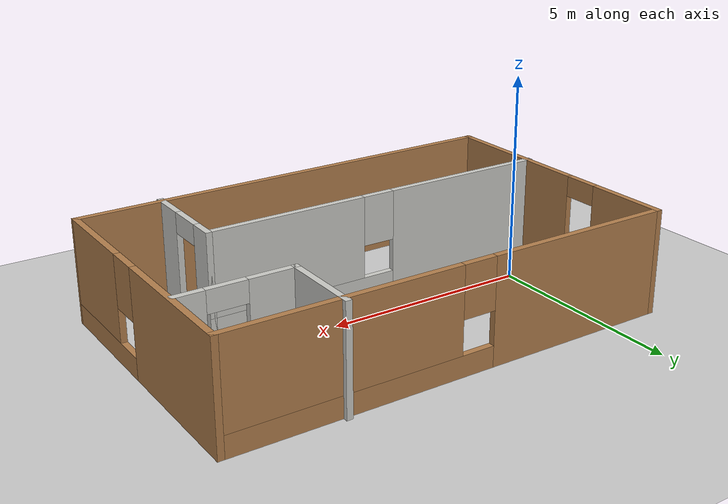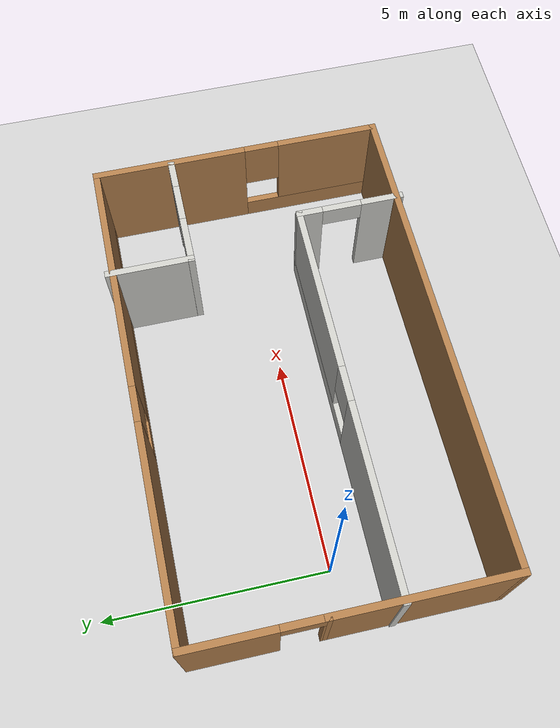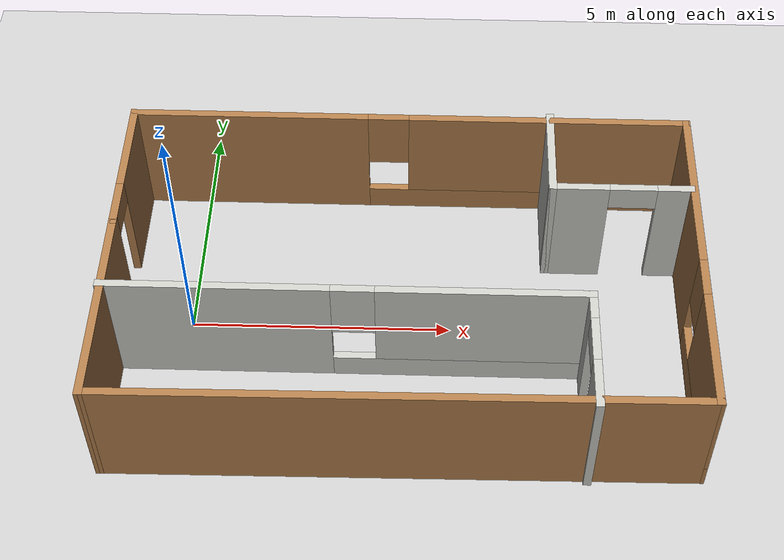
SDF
<sdf version="1.7">
 <world name="default">
  <light name="sun" type="directional">
   <pose>0 0 10 0 -0 0</pose>
   <diffuse>0.8 0.8 0.8 1</diffuse>
   <specular>0.2 0.2 0.2 1</specular>
   <attenuation>
    <range>1000</range>
    <constant>0.9</constant>
    <linear>0.01</linear>
    <quadratic>0.001</quadratic>
   </attenuation>
   <direction>-0.5 0.1 -0.9</direction>
   <spot><inner_angle>0</inner_angle><outer_angle>0</outer_angle><falloff>0</falloff></spot>
  </light>
  <model name="ground_plane">
   <static>1</static>
   <link name="link">
    <collision name="collision">
     <geometry><plane><normal>0 0 1</normal><size>100 100</size></plane></geometry>
     <surface><friction><ode><mu>100</mu><mu2>50</mu2></ode></friction></surface>
    </collision>
    <visual name="visual">
     <cast_shadows>0</cast_shadows>
     <geometry><plane><normal>0 0 1</normal><size>100 100</size></plane></geometry>
     <material>
      <script><uri>file://media/materials/scripts/gazebo.material</uri><name>Gazebo/Grey</name></script>
     </material>
    </visual>
   </link>
  </model>
  <gravity>0 0 -9.8</gravity>
  <magnetic_field>6e-06 2.3e-05 -4.2e-05</magnetic_field>
  <atmosphere type="adiabatic"/>
  <physics type="ode">
   <max_step_size>0.001</max_step_size>
   <real_time_factor>1</real_time_factor>
   <real_time_update_rate>1000</real_time_update_rate>
  </physics>
  <scene><ambient>0.4 0.4 0.4 1</ambient><background>0.7 0.7 0.7 1</background><shadows>1</shadows></scene>
  <audio><device>default</device></audio>
  <spherical_coordinates>
   <surface_model>EARTH_WGS84</surface_model>
   <latitude_deg>0</latitude_deg>
   <longitude_deg>0</longitude_deg>
   <elevation>0</elevation>
   <heading_deg>0</heading_deg>
  </spherical_coordinates>
  <model name="test2">
   <pose>4.1096 0.031605 0 0 -0 0</pose>
   <link name="Wall_0">
    <collision name="Wall_0_Collision">
     <geometry><box><size>4 0.15 2.5</size></box></geometry>
     <pose>0 0 1.25 0 -0 0</pose>
    </collision>
    <visual name="Wall_0_Visual">
     <pose>0 0 1.25 0 -0 0</pose>
     <geometry><box><size>4 0.15 2.5</size></box></geometry>
     <material>
      <script><uri>file://media/materials/scripts/gazebo.material</uri><name>Gazebo/Wood</name></script>
      <ambient>1 1 1 1</ambient>
     </material>
     <meta><layer>0</layer></meta>
    </visual>
    <pose>-5.40939 -1.47636 0 0 -0 -1.5708</pose>
   </link>
   <link name="Wall_10">
    <pose>-1.0163 -1.04578 0 0 -0 0</pose>
    <visual name="Wall_10_Visual_0">
     <pose>-2.38713 0 1.25 0 -0 0</pose>
     <geometry><box><size>4.22575 0.15 2.5</size></box></geometry>
     <material>
      <script><uri>file://media/materials/scripts/gazebo.material</uri><name>Gazebo/CeilingTiled</name></script>
      <ambient>1 1 1 1</ambient>
     </material>
     <meta><layer>0</layer></meta>
    </visual>
    <collision name="Wall_10_Collision_0">
     <geometry><box><size>4.22575 0.15 2.5</size></box></geometry>
     <pose>-2.38713 0 1.25 0 -0 0</pose>
    </collision>
    <visual name="Wall_10_Visual_1">
     <pose>2.11287 0 0.25 0 -0 0</pose>
     <geometry><box><size>4.77425 0.15 0.5</size></box></geometry>
     <material>
      <script><uri>file://media/materials/scripts/gazebo.material</uri><name>Gazebo/CeilingTiled</name></script>
      <ambient>1 1 1 1</ambient>
     </material>
     <meta><layer>0</layer></meta>
    </visual>
    <collision name="Wall_10_Collision_1">
     <geometry><box><size>4.77425 0.15 0.5</size></box></geometry>
     <pose>2.11287 0 0.25 0 -0 0</pose>
    </collision>
    <visual name="Wall_10_Visual_2">
     <pose>2.51287 0 1.5 0 -0 0</pose>
     <geometry><box><size>3.97425 0.15 2</size></box></geometry>
     <material>
      <script><uri>file://media/materials/scripts/gazebo.material</uri><name>Gazebo/CeilingTiled</name></script>
      <ambient>1 1 1 1</ambient>
     </material>
     <meta><layer>0</layer></meta>
    </visual>
    <collision name="Wall_10_Collision_2">
     <geometry><box><size>3.97425 0.15 2</size></box></geometry>
     <pose>2.51287 0 1.5 0 -0 0</pose>
    </collision>
    <visual name="Wall_10_Visual_3">
     <pose>0.125746 0 1.9 0 -0 0</pose>
     <geometry><box><size>0.8 0.15 1.2</size></box></geometry>
     <material>
      <script><uri>file://media/materials/scripts/gazebo.material</uri><name>Gazebo/CeilingTiled</name></script>
      <ambient>1 1 1 1</ambient>
     </material>
     <meta><layer>0</layer></meta>
    </visual>
    <collision name="Wall_10_Collision_3">
     <geometry><box><size>0.8 0.15 1.2</size></box></geometry>
     <pose>0.125746 0 1.9 0 -0 0</pose>
    </collision>
   </link>
   <link name="Wall_11">
    <pose>3.4087 -2.22078 0 0 -0 -1.5708</pose>
    <visual name="Wall_11_Visual_0">
     <pose>-0.944437 0 1.25 0 -0 0</pose>
     <geometry><box><size>0.611126 0.15 2.5</size></box></geometry>
     <material>
      <script><uri>file://media/materials/scripts/gazebo.material</uri><name>Gazebo/CeilingTiled</name></script>
      <ambient>1 1 1 1</ambient>
     </material>
     <meta><layer>0</layer></meta>
    </visual>
    <collision name="Wall_11_Collision_0">
     <geometry><box><size>0.611126 0.15 2.5</size></box></geometry>
     <pose>-0.944437 0 1.25 0 -0 0</pose>
    </collision>
    <visual name="Wall_11_Visual_1">
     <pose>0.755563 0 1.25 0 -0 0</pose>
     <geometry><box><size>0.988874 0.15 2.5</size></box></geometry>
     <material>
      <script><uri>file://media/materials/scripts/gazebo.material</uri><name>Gazebo/CeilingTiled</name></script>
      <ambient>1 1 1 1</ambient>
     </material>
     <meta><layer>0</layer></meta>
    </visual>
    <collision name="Wall_11_Collision_1">
     <geometry><box><size>0.988874 0.15 2.5</size></box></geometry>
     <pose>0.755563 0 1.25 0 -0 0</pose>
    </collision>
    <visual name="Wall_11_Visual_2">
     <pose>-0.188874 0 2.25 0 -0 0</pose>
     <geometry><box><size>0.9 0.15 0.5</size></box></geometry>
     <material>
      <script><uri>file://media/materials/scripts/gazebo.material</uri><name>Gazebo/CeilingTiled</name></script>
      <ambient>1 1 1 1</ambient>
     </material>
     <meta><layer>0</layer></meta>
    </visual>
    <collision name="Wall_11_Collision_2">
     <geometry><box><size>0.9 0.15 0.5</size></box></geometry>
     <pose>-0.188874 0 2.25 0 -0 0</pose>
    </collision>
   </link>
   <link name="Wall_2">
    <pose>-5.40939 1.87364 0 0 -0 1.5708</pose>
    <visual name="Wall_2_Visual_0">
     <pose>-1.45027 0 1.25 0 -0 0</pose>
     <geometry><box><size>0.099454 0.15 2.5</size></box></geometry>
     <material>
      <script><uri>file://media/materials/scripts/gazebo.material</uri><name>Gazebo/Wood</name></script>
      <ambient>1 1 1 1</ambient>
     </material>
     <meta><layer>0</layer></meta>
    </visual>
    <collision name="Wall_2_Collision_0">
     <geometry><box><size>0.099454 0.15 2.5</size></box></geometry>
     <pose>-1.45027 0 1.25 0 -0 0</pose>
    </collision>
    <visual name="Wall_2_Visual_1">
     <pose>0.499727 0 1.25 0 -0 0</pose>
     <geometry><box><size>2.00055 0.15 2.5</size></box></geometry>
     <material>
      <script><uri>file://media/materials/scripts/gazebo.material</uri><name>Gazebo/Wood</name></script>
      <ambient>1 1 1 1</ambient>
     </material>
     <meta><layer>0</layer></meta>
    </visual>
    <collision name="Wall_2_Collision_1">
     <geometry><box><size>2.00055 0.15 2.5</size></box></geometry>
     <pose>0.499727 0 1.25 0 -0 0</pose>
    </collision>
    <visual name="Wall_2_Visual_2">
     <pose>-0.950546 0 2.25 0 -0 0</pose>
     <geometry><box><size>0.9 0.15 0.5</size></box></geometry>
     <material>
      <script><uri>file://media/materials/scripts/gazebo.material</uri><name>Gazebo/Wood</name></script>
      <ambient>1 1 1 1</ambient>
     </material>
     <meta><layer>0</layer></meta>
    </visual>
    <collision name="Wall_2_Collision_2">
     <geometry><box><size>0.9 0.15 0.5</size></box></geometry>
     <pose>-0.950546 0 2.25 0 -0 0</pose>
    </collision>
   </link>
   <link name="Wall_3">
    <pose>0.015607 3.29864 0 0 -0 0</pose>
    <visual name="Wall_3_Visual_0">
     <pose>-3.15558 0 1.25 0 -0 0</pose>
     <geometry><box><size>4.68884 0.15 2.5</size></box></geometry>
     <material>
      <script><uri>file://media/materials/scripts/gazebo.material</uri><name>Gazebo/Wood</name></script>
      <ambient>1 1 1 1</ambient>
     </material>
     <meta><layer>0</layer></meta>
    </visual>
    <collision name="Wall_3_Collision_0">
     <geometry><box><size>4.68884 0.15 2.5</size></box></geometry>
     <pose>-3.15558 0 1.25 0 -0 0</pose>
    </collision>
    <visual name="Wall_3_Visual_1">
     <pose>2.34442 0 0.25 0 -0 0</pose>
     <geometry><box><size>6.31116 0.15 0.5</size></box></geometry>
     <material>
      <script><uri>file://media/materials/scripts/gazebo.material</uri><name>Gazebo/Wood</name></script>
      <ambient>1 1 1 1</ambient>
     </material>
     <meta><layer>0</layer></meta>
    </visual>
    <collision name="Wall_3_Collision_1">
     <geometry><box><size>6.31116 0.15 0.5</size></box></geometry>
     <pose>2.34442 0 0.25 0 -0 0</pose>
    </collision>
    <visual name="Wall_3_Visual_2">
     <pose>2.74442 0 1.5 0 -0 0</pose>
     <geometry><box><size>5.51116 0.15 2</size></box></geometry>
     <material>
      <script><uri>file://media/materials/scripts/gazebo.material</uri><name>Gazebo/Wood</name></script>
      <ambient>1 1 1 1</ambient>
     </material>
     <meta><layer>0</layer></meta>
    </visual>
    <collision name="Wall_3_Collision_2">
     <geometry><box><size>5.51116 0.15 2</size></box></geometry>
     <pose>2.74442 0 1.5 0 -0 0</pose>
    </collision>
    <visual name="Wall_3_Visual_3">
     <pose>-0.411158 0 1.9 0 -0 0</pose>
     <geometry><box><size>0.8 0.15 1.2</size></box></geometry>
     <material>
      <script><uri>file://media/materials/scripts/gazebo.material</uri><name>Gazebo/Wood</name></script>
      <ambient>1 1 1 1</ambient>
     </material>
     <meta><layer>0</layer></meta>
    </visual>
    <collision name="Wall_3_Collision_3">
     <geometry><box><size>0.8 0.15 1.2</size></box></geometry>
     <pose>-0.411158 0 1.9 0 -0 0</pose>
    </collision>
   </link>
   <link name="Wall_4">
    <pose>5.44061 -0.001359 0 0 -0 -1.5708</pose>
    <visual name="Wall_4_Visual_0">
     <pose>-1.59223 0 1.25 0 -0 0</pose>
     <geometry><box><size>3.56555 0.15 2.5</size></box></geometry>
     <material>
      <script><uri>file://media/materials/scripts/gazebo.material</uri><name>Gazebo/Wood</name></script>
      <ambient>1 1 1 1</ambient>
     </material>
     <meta><layer>0</layer></meta>
    </visual>
    <collision name="Wall_4_Collision_0">
     <geometry><box><size>3.56555 0.15 2.5</size></box></geometry>
     <pose>-1.59223 0 1.25 0 -0 0</pose>
    </collision>
    <visual name="Wall_4_Visual_1">
     <pose>1.78277 0 0.25 0 -0 0</pose>
     <geometry><box><size>3.18445 0.15 0.5</size></box></geometry>
     <material>
      <script><uri>file://media/materials/scripts/gazebo.material</uri><name>Gazebo/Wood</name></script>
      <ambient>1 1 1 1</ambient>
     </material>
     <meta><layer>0</layer></meta>
    </visual>
    <collision name="Wall_4_Collision_1">
     <geometry><box><size>3.18445 0.15 0.5</size></box></geometry>
     <pose>1.78277 0 0.25 0 -0 0</pose>
    </collision>
    <visual name="Wall_4_Visual_2">
     <pose>2.18277 0 1.5 0 -0 0</pose>
     <geometry><box><size>2.38445 0.15 2</size></box></geometry>
     <material>
      <script><uri>file://media/materials/scripts/gazebo.material</uri><name>Gazebo/Wood</name></script>
      <ambient>1 1 1 1</ambient>
     </material>
     <meta><layer>0</layer></meta>
    </visual>
    <collision name="Wall_4_Collision_2">
     <geometry><box><size>2.38445 0.15 2</size></box></geometry>
     <pose>2.18277 0 1.5 0 -0 0</pose>
    </collision>
    <visual name="Wall_4_Visual_3">
     <pose>0.590546 0 1.9 0 -0 0</pose>
     <geometry><box><size>0.8 0.15 1.2</size></box></geometry>
     <material>
      <script><uri>file://media/materials/scripts/gazebo.material</uri><name>Gazebo/Wood</name></script>
      <ambient>1 1 1 1</ambient>
     </material>
     <meta><layer>0</layer></meta>
    </visual>
    <collision name="Wall_4_Collision_3">
     <geometry><box><size>0.8 0.15 1.2</size></box></geometry>
     <pose>0.590546 0 1.9 0 -0 0</pose>
    </collision>
   </link>
   <link name="Wall_5">
    <collision name="Wall_5_Collision">
     <geometry><box><size>11.0005 0.15 2.5</size></box></geometry>
     <pose>0 0 1.25 0 -0 0</pose>
    </collision>
    <visual name="Wall_5_Visual">
     <pose>0 0 1.25 0 -0 0</pose>
     <geometry><box><size>11.0005 0.15 2.5</size></box></geometry>
     <material>
      <script><uri>file://media/materials/scripts/gazebo.material</uri><name>Gazebo/Wood</name></script>
      <ambient>1 1 1 1</ambient>
     </material>
     <meta><layer>0</layer></meta>
    </visual>
    <pose>0.015607 -3.35136 0 0 -0 -3.13238</pose>
   </link>
   <link name="Wall_7">
    <collision name="Wall_7_Collision">
     <geometry><box><size>2 0.15 2.5</size></box></geometry>
     <pose>0 0 1.25 0 -0 0</pose>
    </collision>
    <visual name="Wall_7_Visual">
     <pose>0 0 1.25 0 -0 0</pose>
     <geometry><box><size>2 0.15 2.5</size></box></geometry>
     <material>
      <script><uri>file://media/materials/scripts/gazebo.material</uri><name>Gazebo/CeilingTiled</name></script>
      <ambient>1 1 1 1</ambient>
     </material>
     <meta><layer>0</layer></meta>
    </visual>
    <pose>2.7761 2.47705 0 0 -0 -1.5708</pose>
   </link>
   <link name="Wall_8">
    <pose>4.07609 1.55205 0 0 -0 0</pose>
    <visual name="Wall_8_Visual_0">
     <pose>-0.800823 0 1.25 0 -0 0</pose>
     <geometry><box><size>1.14835 0.15 2.5</size></box></geometry>
     <material>
      <script><uri>file://media/materials/scripts/gazebo.material</uri><name>Gazebo/CeilingTiled</name></script>
      <ambient>1 1 1 1</ambient>
     </material>
     <meta><layer>0</layer></meta>
    </visual>
    <collision name="Wall_8_Collision_0">
     <geometry><box><size>1.14835 0.15 2.5</size></box></geometry>
     <pose>-0.800823 0 1.25 0 -0 0</pose>
    </collision>
    <visual name="Wall_8_Visual_1">
     <pose>1.02418 0 1.25 0 -0 0</pose>
     <geometry><box><size>0.701646 0.15 2.5</size></box></geometry>
     <material>
      <script><uri>file://media/materials/scripts/gazebo.material</uri><name>Gazebo/CeilingTiled</name></script>
      <ambient>1 1 1 1</ambient>
     </material>
     <meta><layer>0</layer></meta>
    </visual>
    <collision name="Wall_8_Collision_1">
     <geometry><box><size>0.701646 0.15 2.5</size></box></geometry>
     <pose>1.02418 0 1.25 0 -0 0</pose>
    </collision>
    <visual name="Wall_8_Visual_2">
     <pose>0.223354 0 2.25 0 -0 0</pose>
     <geometry><box><size>0.9 0.15 0.5</size></box></geometry>
     <material>
      <script><uri>file://media/materials/scripts/gazebo.material</uri><name>Gazebo/CeilingTiled</name></script>
      <ambient>1 1 1 1</ambient>
     </material>
     <meta><layer>0</layer></meta>
    </visual>
    <collision name="Wall_8_Collision_2">
     <geometry><box><size>0.9 0.15 0.5</size></box></geometry>
     <pose>0.223354 0 2.25 0 -0 0</pose>
    </collision>
   </link>
   <static>1</static>
  </model>
 </world>
</sdf>
